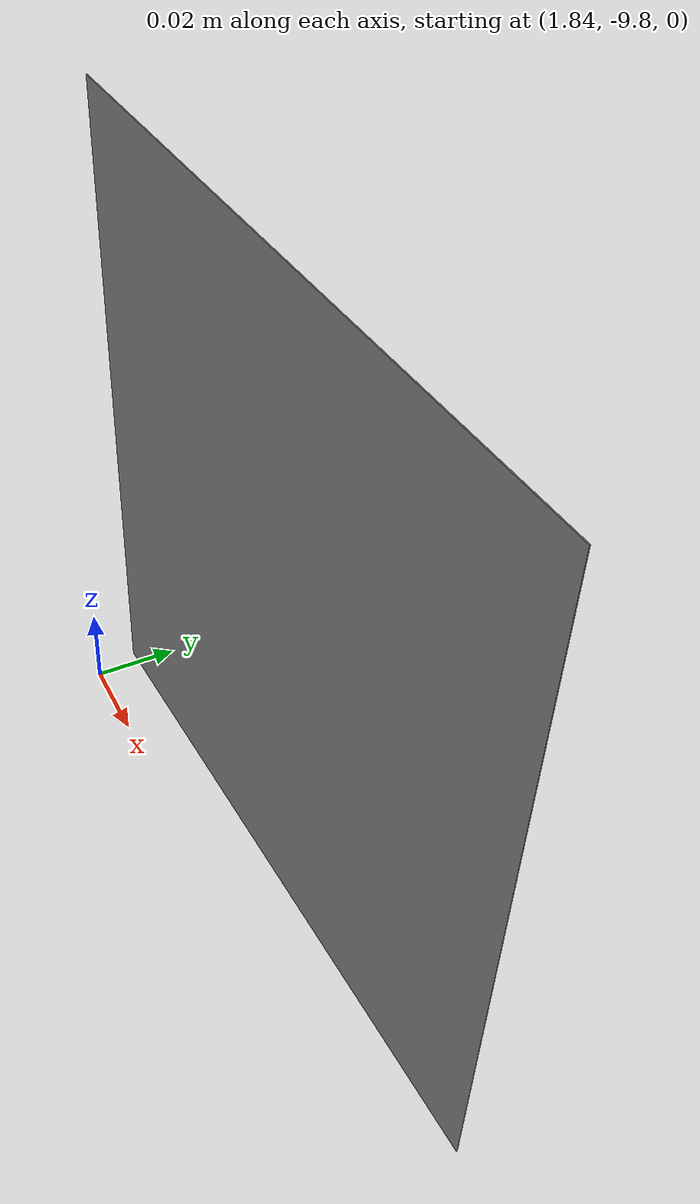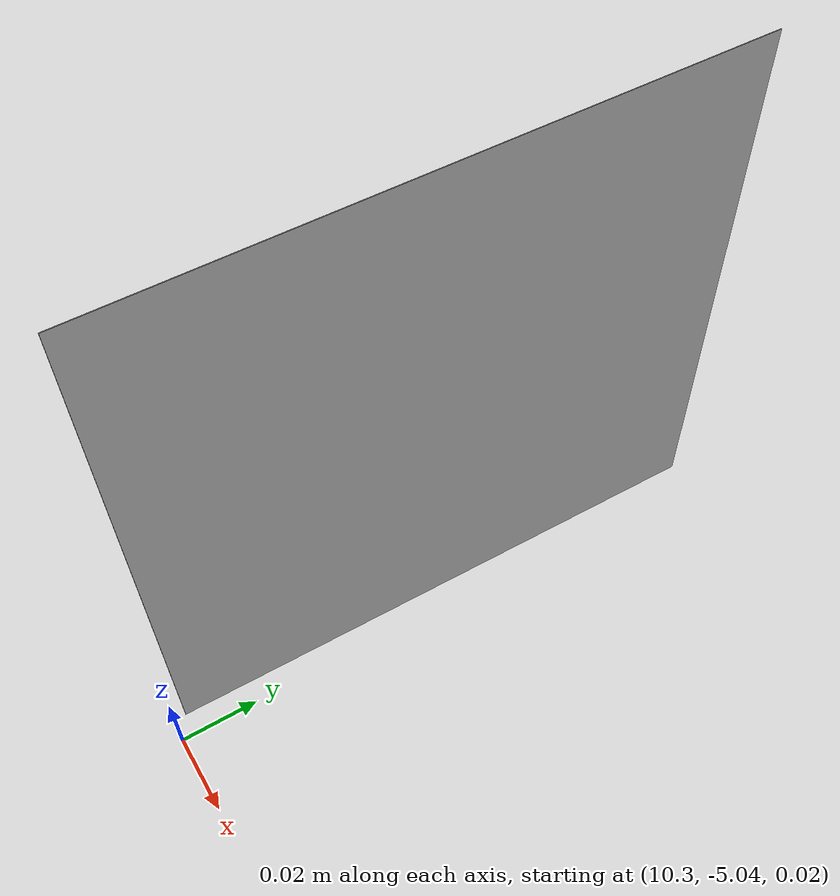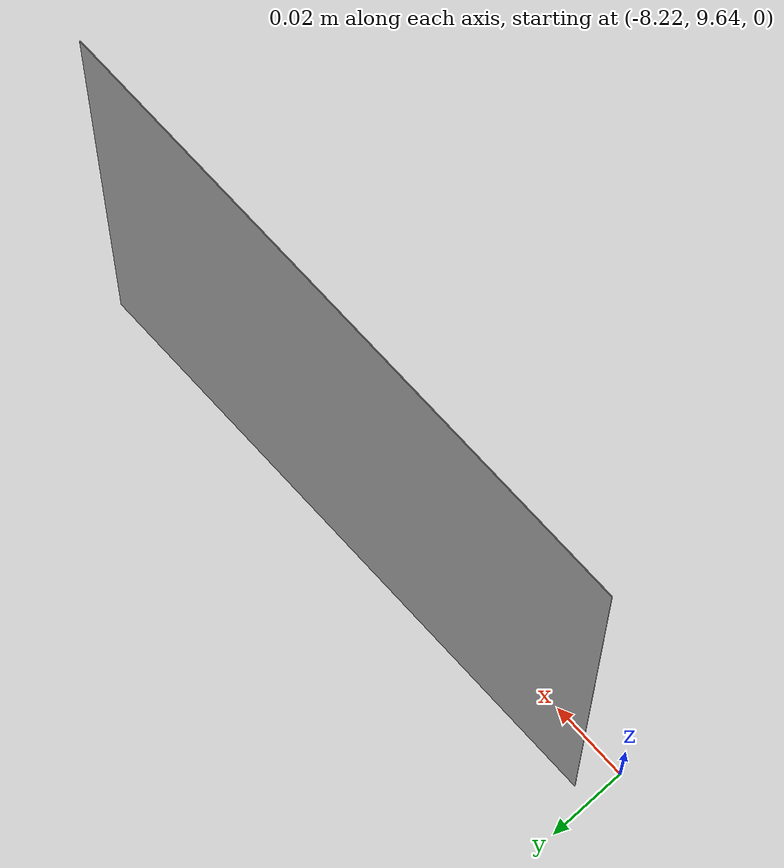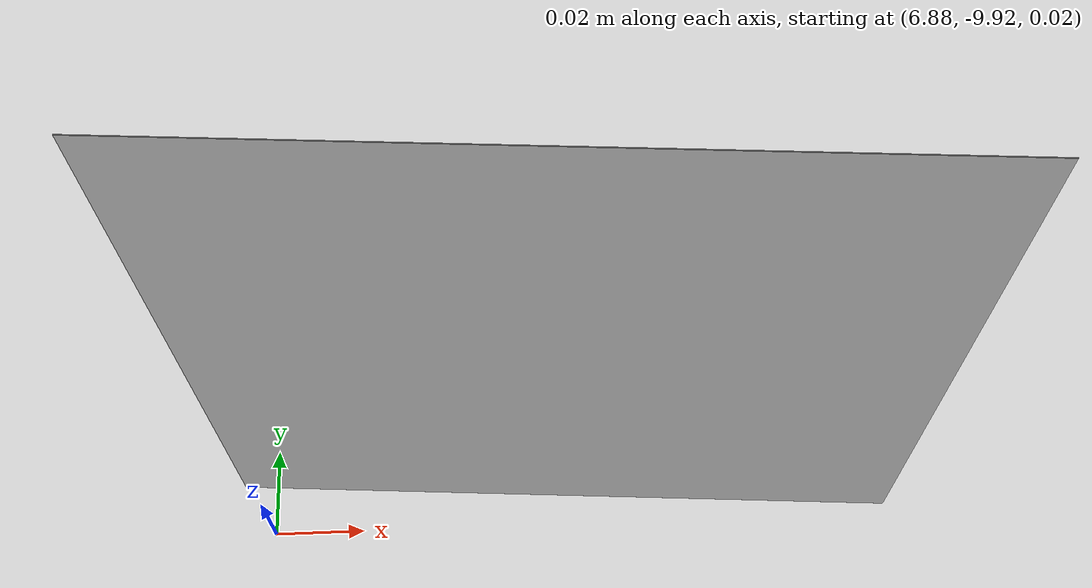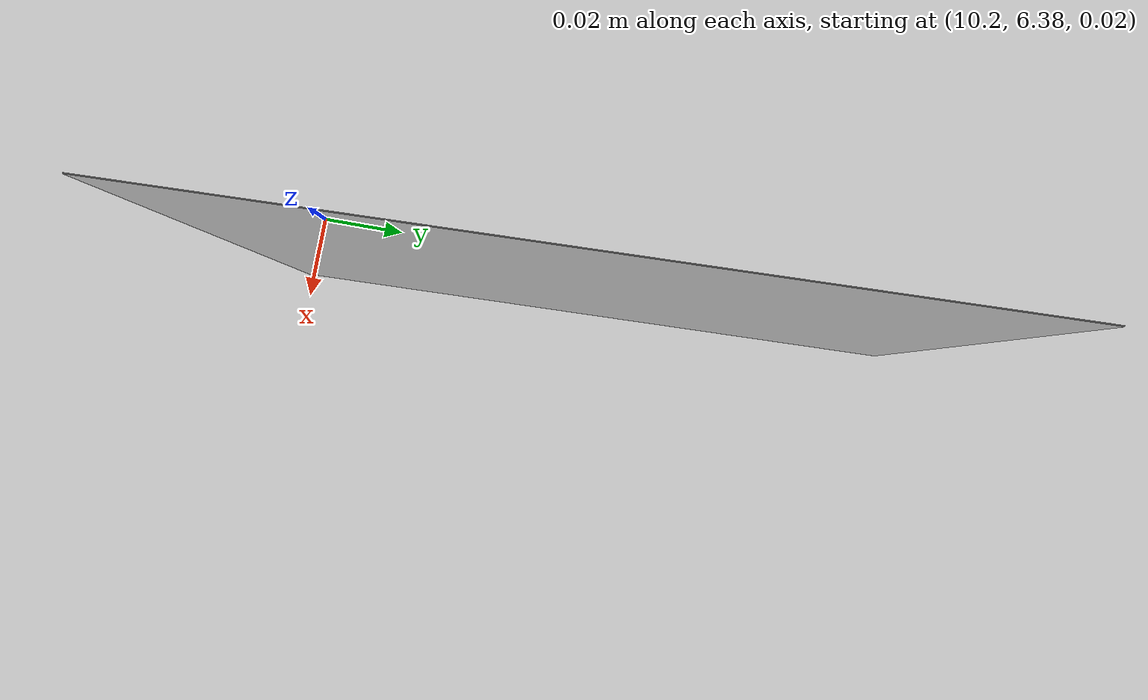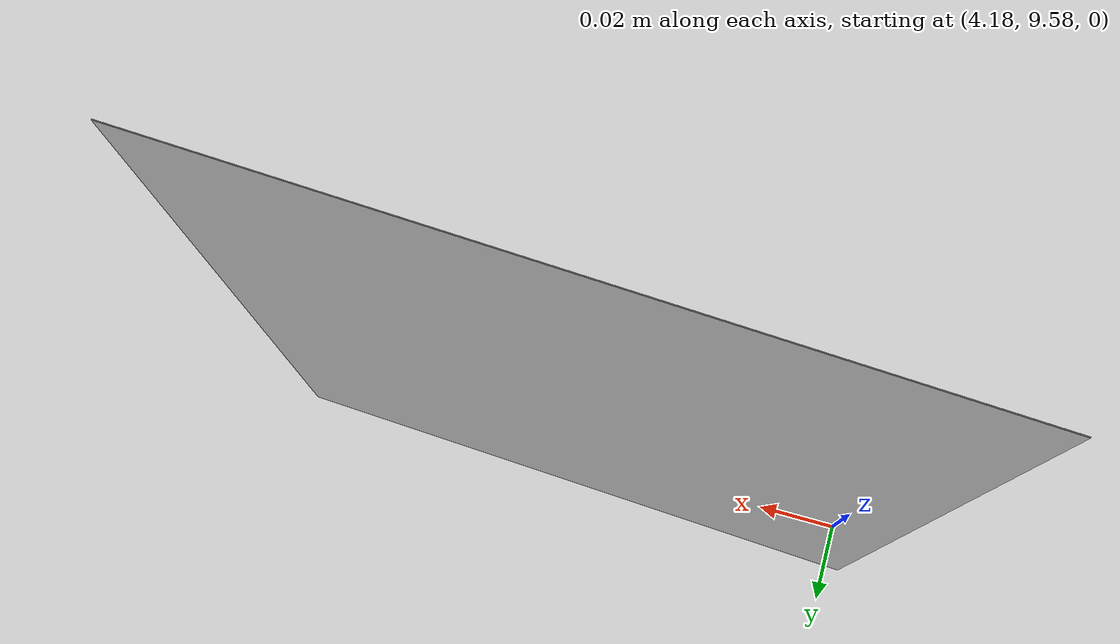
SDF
<sdf version="1.6">
 <world name="default">
  <scene><ambient>0.4 0.4 0.4 1</ambient><background>0.7 0.7 0.7 1</background><shadows>1</shadows></scene>
  <light name="sun" type="directional">
   <pose>0 0 10 0 -0 0</pose>
   <diffuse>0.8 0.8 0.8 1</diffuse>
   <specular>0.2 0.2 0.2 1</specular>
   <attenuation>
    <range>1000</range>
    <constant>0.9</constant>
    <linear>0.01</linear>
    <quadratic>0.001</quadratic>
   </attenuation>
   <direction>-0.5 0.1 -0.9</direction>
  </light>
  <model name="my_ground_plane">
   <static>1</static>
   <link name="link">
    <collision name="collision">
     <geometry><plane><normal>0 0 1</normal><size>100 100</size></plane></geometry>
     <surface><friction><ode><mu>100</mu><mu2>50</mu2></ode></friction></surface>
    </collision>
    <visual name="visual">
     <cast_shadows>0</cast_shadows>
     <geometry><plane><normal>0 0 1</normal><size>40 40</size></plane></geometry>
     <material>
      <script>
       <uri>model://my_ground_plane/materials/scripts</uri>
       <uri>model://my_ground_plane/materials/textures</uri>
       <name>MyGroundPlane/Image</name>
      </script>
     </material>
    </visual>
   </link>
  </model>
  <physics name="default_physics" default="0" type="ode">
   <real_time_update_rate>1000</real_time_update_rate>
   <max_step_size>0.001</max_step_size>
   <real_time_factor>3</real_time_factor>
   <ode>
    <solver>
     <type>quick</type>
     <iters>150</iters>
     <precon_iters>0</precon_iters>
     <sor>1.4</sor>
     <use_dynamic_moi_rescaling>1</use_dynamic_moi_rescaling>
    </solver>
    <constraints>
     <cfm>1e-05</cfm>
     <erp>0.2</erp>
     <contact_max_correcting_vel>2000</contact_max_correcting_vel>
     <contact_surface_layer>0.01</contact_surface_layer>
    </constraints>
   </ode>
  </physics>
  <gravity>0 0 -9.8</gravity>
  <magnetic_field>6e-06 2.3e-05 -4.2e-05</magnetic_field>
  <atmosphere type="adiabatic"/>
  <audio><device>default</device></audio>
  <spherical_coordinates>
   <surface_model>EARTH_WGS84</surface_model>
   <latitude_deg>0</latitude_deg>
   <longitude_deg>0</longitude_deg>
   <elevation>0</elevation>
   <heading_deg>0</heading_deg>
  </spherical_coordinates>
  <model name="marker1">
   <link name="link">
    <inertial>
     <mass>0.001</mass>
     <inertia>
      <ixx>3.75e-06</ixx>
      <ixy>0</ixy>
      <ixz>0</ixz>
      <iyy>1.875e-06</iyy>
      <iyz>0</iyz>
      <izz>1.875e-06</izz>
     </inertia>
    </inertial>
    <visual name="front_visual">
     <pose>5e-05 0 0 0 -0 0</pose>
     <geometry><box><size>0.0001 0.15 0.15</size></box></geometry>
     <material>
      <script>
       <uri>model://marker1/materials/scripts</uri>
       <uri>model://marker1/materials/textures</uri>
       <name>Marker1</name>
      </script>
     </material>
    </visual>
    <visual name="rear_visual">
     <pose>-5e-05 0 0 0 -0 0</pose>
     <geometry><box><size>0.0001 0.15 0.15</size></box></geometry>
    </visual>
    <collision name="collision"><geometry><box><size>0.0001 0.15 0.15</size></box></geometry></collision>
   </link>
   <pose>-10.1525 -2.04054 0.075 0 -0 0</pose>
  </model>
  <model name="marker2">
   <link name="link">
    <inertial>
     <mass>0.001</mass>
     <inertia>
      <ixx>3.75e-06</ixx>
      <ixy>0</ixy>
      <ixz>0</ixz>
      <iyy>1.875e-06</iyy>
      <iyz>0</iyz>
      <izz>1.875e-06</izz>
     </inertia>
    </inertial>
    <visual name="front_visual">
     <pose>5e-05 0 0 0 -0 0</pose>
     <geometry><box><size>0.0001 0.15 0.15</size></box></geometry>
     <material>
      <script>
       <uri>model://marker2/materials/scripts</uri>
       <uri>model://marker2/materials/textures</uri>
       <name>Marker2</name>
      </script>
     </material>
    </visual>
    <visual name="rear_visual">
     <pose>-5e-05 0 0 0 -0 0</pose>
     <geometry><box><size>0.0001 0.15 0.15</size></box></geometry>
    </visual>
    <collision name="collision"><geometry><box><size>0.0001 0.15 0.15</size></box></geometry></collision>
   </link>
   <pose>-10.1468 3.64609 0.074994 -0 1e-06 3e-06</pose>
  </model>
  <model name="marker3">
   <link name="link">
    <inertial>
     <mass>0.001</mass>
     <inertia>
      <ixx>3.75e-06</ixx>
      <ixy>0</ixy>
      <ixz>0</ixz>
      <iyy>1.875e-06</iyy>
      <iyz>0</iyz>
      <izz>1.875e-06</izz>
     </inertia>
    </inertial>
    <visual name="front_visual">
     <pose>5e-05 0 0 0 -0 0</pose>
     <geometry><box><size>0.0001 0.15 0.15</size></box></geometry>
     <material>
      <script>
       <uri>model://marker3/materials/scripts</uri>
       <uri>model://marker3/materials/textures</uri>
       <name>Marker3</name>
      </script>
     </material>
    </visual>
    <visual name="rear_visual">
     <pose>-5e-05 0 0 0 -0 0</pose>
     <geometry><box><size>0.0001 0.15 0.15</size></box></geometry>
    </visual>
    <collision name="collision"><geometry><box><size>0.0001 0.15 0.15</size></box></geometry></collision>
   </link>
   <pose>-8.14025 9.64881 0.075 0 -0 -1.57487</pose>
  </model>
  <model name="marker4">
   <link name="link">
    <inertial>
     <mass>0.001</mass>
     <inertia>
      <ixx>3.75e-06</ixx>
      <ixy>0</ixy>
      <ixz>0</ixz>
      <iyy>1.875e-06</iyy>
      <iyz>0</iyz>
      <izz>1.875e-06</izz>
     </inertia>
    </inertial>
    <visual name="front_visual">
     <pose>5e-05 0 0 0 -0 0</pose>
     <geometry><box><size>0.0001 0.15 0.15</size></box></geometry>
     <material>
      <script>
       <uri>model://marker4/materials/scripts</uri>
       <uri>model://marker4/materials/textures</uri>
       <name>Marker4</name>
      </script>
     </material>
    </visual>
    <visual name="rear_visual">
     <pose>-5e-05 0 0 0 -0 0</pose>
     <geometry><box><size>0.0001 0.15 0.15</size></box></geometry>
    </visual>
    <collision name="collision"><geometry><box><size>0.0001 0.15 0.15</size></box></geometry></collision>
   </link>
   <pose>-1.94153 9.52888 0.075 0 -2.9e-05 -1.51246</pose>
  </model>
  <model name="marker5">
   <link name="link">
    <inertial>
     <mass>0.001</mass>
     <inertia>
      <ixx>3.75e-06</ixx>
      <ixy>0</ixy>
      <ixz>0</ixz>
      <iyy>1.875e-06</iyy>
      <iyz>0</iyz>
      <izz>1.875e-06</izz>
     </inertia>
    </inertial>
    <visual name="front_visual">
     <pose>5e-05 0 0 0 -0 0</pose>
     <geometry><box><size>0.0001 0.15 0.15</size></box></geometry>
     <material>
      <script>
       <uri>model://marker5/materials/scripts</uri>
       <uri>model://marker5/materials/textures</uri>
       <name>Marker5</name>
      </script>
     </material>
    </visual>
    <visual name="rear_visual">
     <pose>-5e-05 0 0 0 -0 0</pose>
     <geometry><box><size>0.0001 0.15 0.15</size></box></geometry>
    </visual>
    <collision name="collision"><geometry><box><size>0.0001 0.15 0.15</size></box></geometry></collision>
   </link>
   <pose>4.25089 9.58684 0.075 0 1.2e-05 -1.62604</pose>
  </model>
  <model name="marker6">
   <link name="link">
    <inertial>
     <mass>0.001</mass>
     <inertia>
      <ixx>3.75e-06</ixx>
      <ixy>0</ixy>
      <ixz>0</ixz>
      <iyy>1.875e-06</iyy>
      <iyz>0</iyz>
      <izz>1.875e-06</izz>
     </inertia>
    </inertial>
    <visual name="front_visual">
     <pose>5e-05 0 0 0 -0 0</pose>
     <geometry><box><size>0.0001 0.15 0.15</size></box></geometry>
     <material>
      <script>
       <uri>model://marker6/materials/scripts</uri>
       <uri>model://marker6/materials/textures</uri>
       <name>Marker6</name>
      </script>
     </material>
    </visual>
    <visual name="rear_visual">
     <pose>-5e-05 0 0 0 -0 0</pose>
     <geometry><box><size>0.0001 0.15 0.15</size></box></geometry>
    </visual>
    <collision name="collision"><geometry><box><size>0.0001 0.15 0.15</size></box></geometry></collision>
   </link>
   <pose>10.2117 6.45164 0.087113 0 -0 -3.10774</pose>
  </model>
  <model name="marker7">
   <link name="link">
    <inertial>
     <mass>0.001</mass>
     <inertia>
      <ixx>3.75e-06</ixx>
      <ixy>0</ixy>
      <ixz>0</ixz>
      <iyy>1.875e-06</iyy>
      <iyz>0</iyz>
      <izz>1.875e-06</izz>
     </inertia>
    </inertial>
    <visual name="front_visual">
     <pose>5e-05 0 0 0 -0 0</pose>
     <geometry><box><size>0.0001 0.15 0.15</size></box></geometry>
     <material>
      <script>
       <uri>model://marker7/materials/scripts</uri>
       <uri>model://marker7/materials/textures</uri>
       <name>Marker7</name>
      </script>
     </material>
    </visual>
    <visual name="rear_visual">
     <pose>-5e-05 0 0 0 -0 0</pose>
     <geometry><box><size>0.0001 0.15 0.15</size></box></geometry>
    </visual>
    <collision name="collision"><geometry><box><size>0.0001 0.15 0.15</size></box></geometry></collision>
   </link>
   <pose>10.2648 1.50072 0.09465 0 0 -3.1267</pose>
  </model>
  <model name="marker8">
   <link name="link">
    <inertial>
     <mass>0.001</mass>
     <inertia>
      <ixx>3.75e-06</ixx>
      <ixy>0</ixy>
      <ixz>0</ixz>
      <iyy>1.875e-06</iyy>
      <iyz>0</iyz>
      <izz>1.875e-06</izz>
     </inertia>
    </inertial>
    <visual name="front_visual">
     <pose>5e-05 0 0 0 -0 0</pose>
     <geometry><box><size>0.0001 0.15 0.15</size></box></geometry>
     <material>
      <script>
       <uri>model://marker8/materials/scripts</uri>
       <uri>model://marker8/materials/textures</uri>
       <name>Marker8</name>
      </script>
     </material>
    </visual>
    <visual name="rear_visual">
     <pose>-5e-05 0 0 0 -0 0</pose>
     <geometry><box><size>0.0001 0.15 0.15</size></box></geometry>
    </visual>
    <collision name="collision"><geometry><box><size>0.0001 0.15 0.15</size></box></geometry></collision>
   </link>
   <pose>10.2914 -4.9611 0.086957 0 -0 3.12532</pose>
  </model>
  <model name="marker9">
   <link name="link">
    <inertial>
     <mass>0.001</mass>
     <inertia>
      <ixx>3.75e-06</ixx>
      <ixy>0</ixy>
      <ixz>0</ixz>
      <iyy>1.875e-06</iyy>
      <iyz>0</iyz>
      <izz>1.875e-06</izz>
     </inertia>
    </inertial>
    <visual name="front_visual">
     <pose>5e-05 0 0 0 -0 0</pose>
     <geometry><box><size>0.0001 0.15 0.15</size></box></geometry>
     <material>
      <script>
       <uri>model://marker9/materials/scripts</uri>
       <uri>model://marker9/materials/textures</uri>
       <name>Marker9</name>
      </script>
     </material>
    </visual>
    <visual name="rear_visual">
     <pose>-5e-05 0 0 0 -0 0</pose>
     <geometry><box><size>0.0001 0.15 0.15</size></box></geometry>
    </visual>
    <collision name="collision"><geometry><box><size>0.0001 0.15 0.15</size></box></geometry></collision>
   </link>
   <pose>6.94617 -9.91123 0.09004 0 -0 1.50448</pose>
  </model>
  <model name="marker10">
   <link name="link">
    <inertial>
     <mass>0.001</mass>
     <inertia>
      <ixx>3.75e-06</ixx>
      <ixy>0</ixy>
      <ixz>0</ixz>
      <iyy>1.875e-06</iyy>
      <iyz>0</iyz>
      <izz>1.875e-06</izz>
     </inertia>
    </inertial>
    <visual name="front_visual">
     <pose>5e-05 0 0 0 -0 0</pose>
     <geometry><box><size>0.0001 0.15 0.15</size></box></geometry>
     <material>
      <script>
       <uri>model://marker10/materials/scripts</uri>
       <uri>model://marker10/materials/textures</uri>
       <name>Marker10</name>
      </script>
     </material>
    </visual>
    <visual name="rear_visual">
     <pose>-5e-05 0 0 0 -0 0</pose>
     <geometry><box><size>0.0001 0.15 0.15</size></box></geometry>
    </visual>
    <collision name="collision"><geometry><box><size>0.0001 0.15 0.15</size></box></geometry></collision>
   </link>
   <pose>1.91487 -9.78726 0.078765 0 -0 1.61397</pose>
  </model>
  <model name="marker11">
   <link name="link">
    <inertial>
     <mass>0.001</mass>
     <inertia>
      <ixx>3.75e-06</ixx>
      <ixy>0</ixy>
      <ixz>0</ixz>
      <iyy>1.875e-06</iyy>
      <iyz>0</iyz>
      <izz>1.875e-06</izz>
     </inertia>
    </inertial>
    <visual name="front_visual">
     <pose>5e-05 0 0 0 -0 0</pose>
     <geometry><box><size>0.0001 0.15 0.15</size></box></geometry>
     <material>
      <script>
       <uri>model://marker11/materials/scripts</uri>
       <uri>model://marker11/materials/textures</uri>
       <name>Marker11</name>
      </script>
     </material>
    </visual>
    <visual name="rear_visual">
     <pose>-5e-05 0 0 0 -0 0</pose>
     <geometry><box><size>0.0001 0.15 0.15</size></box></geometry>
    </visual>
    <collision name="collision"><geometry><box><size>0.0001 0.15 0.15</size></box></geometry></collision>
   </link>
   <pose>-4.83573 -9.85171 0.096742 0 -0 1.51566</pose>
  </model>
  <model name="marker12">
   <link name="link">
    <inertial>
     <mass>0.001</mass>
     <inertia>
      <ixx>3.75e-06</ixx>
      <ixy>0</ixy>
      <ixz>0</ixz>
      <iyy>1.875e-06</iyy>
      <iyz>0</iyz>
      <izz>1.875e-06</izz>
     </inertia>
    </inertial>
    <visual name="front_visual">
     <pose>5e-05 0 0 0 -0 0</pose>
     <geometry><box><size>0.0001 0.15 0.15</size></box></geometry>
     <material>
      <script>
       <uri>model://marker12/materials/scripts</uri>
       <uri>model://marker12/materials/textures</uri>
       <name>Marker12</name>
      </script>
     </material>
    </visual>
    <visual name="rear_visual">
     <pose>-5e-05 0 0 0 -0 0</pose>
     <geometry><box><size>0.0001 0.15 0.15</size></box></geometry>
    </visual>
    <collision name="collision"><geometry><box><size>0.0001 0.15 0.15</size></box></geometry></collision>
   </link>
   <pose>-10.2597 -8.08832 0.09574 0 -0 0</pose>
  </model>
 </world>
</sdf>
